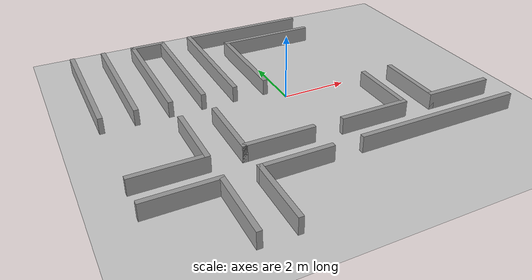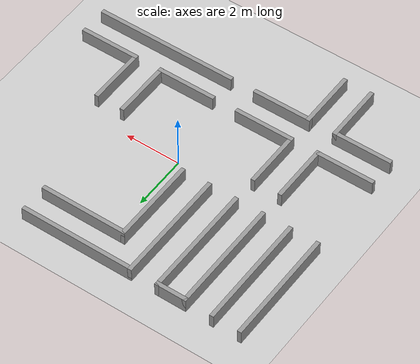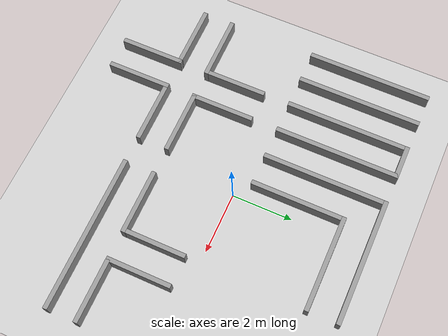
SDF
<sdf version="1.7">
 <world name="default">
  <light name="sun" type="directional">
   <pose>0 0 10 0 -0 0</pose>
   <diffuse>0.8 0.8 0.8 1</diffuse>
   <specular>0.2 0.2 0.2 1</specular>
   <attenuation>
    <range>1000</range>
    <constant>0.9</constant>
    <linear>0.01</linear>
    <quadratic>0.001</quadratic>
   </attenuation>
   <direction>-0.5 0.1 -0.9</direction>
   <spot><inner_angle>0</inner_angle><outer_angle>0</outer_angle><falloff>0</falloff></spot>
  </light>
  <model name="ground_plane">
   <static>1</static>
   <link name="link">
    <collision name="collision">
     <geometry><plane><normal>0 0 1</normal><size>100 100</size></plane></geometry>
     <surface><friction><ode><mu>100</mu><mu2>50</mu2></ode></friction></surface>
    </collision>
    <visual name="visual">
     <cast_shadows>0</cast_shadows>
     <geometry><plane><normal>0 0 1</normal><size>100 100</size></plane></geometry>
     <material>
      <script><uri>file://media/materials/scripts/gazebo.material</uri><name>Gazebo/Grey</name></script>
     </material>
    </visual>
   </link>
  </model>
  <gravity>0 0 -9.8</gravity>
  <magnetic_field>6e-06 2.3e-05 -4.2e-05</magnetic_field>
  <atmosphere type="adiabatic"/>
  <physics type="ode">
   <max_step_size>0.001</max_step_size>
   <real_time_factor>1</real_time_factor>
   <real_time_update_rate>1000</real_time_update_rate>
  </physics>
  <scene><ambient>0.4 0.4 0.4 1</ambient><background>0.7 0.7 0.7 1</background><shadows>1</shadows></scene>
  <audio><device>default</device></audio>
  <spherical_coordinates>
   <surface_model>EARTH_WGS84</surface_model>
   <latitude_deg>0</latitude_deg>
   <longitude_deg>0</longitude_deg>
   <elevation>0</elevation>
   <heading_deg>0</heading_deg>
  </spherical_coordinates>
  <model name="classes">
   <pose>0 -0.5 0 0 -0 0</pose>
   <link name="Wall_11">
    <collision name="Wall_11_Collision">
     <geometry><box><size>3.15 0.15 0.5</size></box></geometry>
     <pose>0 0 0.25 0 -0 0</pose>
    </collision>
    <visual name="Wall_11_Visual">
     <pose>0 0 0.25 0 -0 0</pose>
     <geometry><box><size>3.15 0.15 0.5</size></box></geometry>
     <material>
      <script><uri>file://media/materials/scripts/gazebo.material</uri><name>Gazebo/Grey</name></script>
      <ambient>1 1 1 1</ambient>
     </material>
     <meta><layer>0</layer></meta>
    </visual>
    <pose>-0.5 2.5 0 0 -0 1.5708</pose>
   </link>
   <link name="Wall_12">
    <collision name="Wall_12_Collision">
     <geometry><box><size>3.15 0.15 0.5</size></box></geometry>
     <pose>0 0 0.25 0 -0 0</pose>
    </collision>
    <visual name="Wall_12_Visual">
     <pose>0 0 0.25 0 -0 0</pose>
     <geometry><box><size>3.15 0.15 0.5</size></box></geometry>
     <material>
      <script><uri>file://media/materials/scripts/gazebo.material</uri><name>Gazebo/Grey</name></script>
      <ambient>1 1 1 1</ambient>
     </material>
     <meta><layer>0</layer></meta>
    </visual>
    <pose>1 4 0 0 -0 0</pose>
   </link>
   <link name="Wall_14">
    <collision name="Wall_14_Collision">
     <geometry><box><size>4.15 0.15 0.5</size></box></geometry>
     <pose>0 0 0.25 0 -0 0</pose>
    </collision>
    <visual name="Wall_14_Visual">
     <pose>0 0 0.25 0 -0 0</pose>
     <geometry><box><size>4.15 0.15 0.5</size></box></geometry>
     <material>
      <script><uri>file://media/materials/scripts/gazebo.material</uri><name>Gazebo/Grey</name></script>
      <ambient>1 1 1 1</ambient>
     </material>
     <meta><layer>0</layer></meta>
    </visual>
    <pose>-4.5 3 0 0 -0 1.5708</pose>
   </link>
   <link name="Wall_16">
    <collision name="Wall_16_Collision">
     <geometry><box><size>4.15 0.15 0.5</size></box></geometry>
     <pose>0 0 0.25 0 -0 0</pose>
    </collision>
    <visual name="Wall_16_Visual">
     <pose>0 0 0.25 0 -0 0</pose>
     <geometry><box><size>4.15 0.15 0.5</size></box></geometry>
     <material>
      <script><uri>file://media/materials/scripts/gazebo.material</uri><name>Gazebo/Grey</name></script>
      <ambient>1 1 1 1</ambient>
     </material>
     <meta><layer>0</layer></meta>
    </visual>
    <pose>-5.5 3 0 0 -0 1.5708</pose>
   </link>
   <link name="Wall_21">
    <collision name="Wall_21_Collision">
     <geometry><box><size>2.15 0.15 0.5</size></box></geometry>
     <pose>0 0 0.25 0 -0 0</pose>
    </collision>
    <visual name="Wall_21_Visual">
     <pose>0 0 0.25 0 -0 0</pose>
     <geometry><box><size>2.15 0.15 0.5</size></box></geometry>
     <material>
      <script><uri>file://media/materials/scripts/gazebo.material</uri><name>Gazebo/Grey</name></script>
      <ambient>1 1 1 1</ambient>
     </material>
     <meta><layer>0</layer></meta>
    </visual>
    <pose>-3.5 -1 0 0 -0 -1.5708</pose>
   </link>
   <link name="Wall_22">
    <collision name="Wall_22_Collision">
     <geometry><box><size>2.15 0.15 0.5</size></box></geometry>
     <pose>0 0 0.25 0 -0 0</pose>
    </collision>
    <visual name="Wall_22_Visual">
     <pose>0 0 0.25 0 -0 0</pose>
     <geometry><box><size>2.15 0.15 0.5</size></box></geometry>
     <material>
      <script><uri>file://media/materials/scripts/gazebo.material</uri><name>Gazebo/Grey</name></script>
      <ambient>1 1 1 1</ambient>
     </material>
     <meta><layer>0</layer></meta>
    </visual>
    <pose>-4.5 -2 0 0 -0 3.14159</pose>
   </link>
   <link name="Wall_24">
    <collision name="Wall_24_Collision">
     <geometry><box><size>2.15 0.15 0.5</size></box></geometry>
     <pose>0 0 0.25 0 -0 0</pose>
    </collision>
    <visual name="Wall_24_Visual">
     <pose>0 0 0.25 0 -0 0</pose>
     <geometry><box><size>2.15 0.15 0.5</size></box></geometry>
     <material>
      <script><uri>file://media/materials/scripts/gazebo.material</uri><name>Gazebo/Grey</name></script>
      <ambient>1 1 1 1</ambient>
     </material>
     <meta><layer>0</layer></meta>
    </visual>
    <pose>-2.5 -1 0 0 -0 -1.5708</pose>
   </link>
   <link name="Wall_25">
    <collision name="Wall_25_Collision">
     <geometry><box><size>2.15 0.15 0.5</size></box></geometry>
     <pose>0 0 0.25 0 -0 0</pose>
    </collision>
    <visual name="Wall_25_Visual">
     <pose>0 0 0.25 0 -0 0</pose>
     <geometry><box><size>2.15 0.15 0.5</size></box></geometry>
     <material>
      <script><uri>file://media/materials/scripts/gazebo.material</uri><name>Gazebo/Grey</name></script>
      <ambient>1 1 1 1</ambient>
     </material>
     <meta><layer>0</layer></meta>
    </visual>
    <pose>-1.5 -2 0 0 -0 0</pose>
   </link>
   <link name="Wall_27">
    <collision name="Wall_27_Collision">
     <geometry><box><size>2.15 0.15 0.5</size></box></geometry>
     <pose>0 0 0.25 0 -0 0</pose>
    </collision>
    <visual name="Wall_27_Visual">
     <pose>0 0 0.25 0 -0 0</pose>
     <geometry><box><size>2.15 0.15 0.5</size></box></geometry>
     <material>
      <script><uri>file://media/materials/scripts/gazebo.material</uri><name>Gazebo/Grey</name></script>
      <ambient>1 1 1 1</ambient>
     </material>
     <meta><layer>0</layer></meta>
    </visual>
    <pose>-3.5 -4 0 0 -0 -1.5708</pose>
   </link>
   <link name="Wall_29">
    <collision name="Wall_29_Collision">
     <geometry><box><size>2.15 0.15 0.5</size></box></geometry>
     <pose>0 0 0.25 0 -0 0</pose>
    </collision>
    <visual name="Wall_29_Visual">
     <pose>0 0 0.25 0 -0 0</pose>
     <geometry><box><size>2.15 0.15 0.5</size></box></geometry>
     <material>
      <script><uri>file://media/materials/scripts/gazebo.material</uri><name>Gazebo/Grey</name></script>
      <ambient>1 1 1 1</ambient>
     </material>
     <meta><layer>0</layer></meta>
    </visual>
    <pose>-4.5 -3 0 0 -0 0</pose>
   </link>
   <link name="Wall_31">
    <collision name="Wall_31_Collision">
     <geometry><box><size>2.15 0.15 0.5</size></box></geometry>
     <pose>0 0 0.25 0 -0 0</pose>
    </collision>
    <visual name="Wall_31_Visual">
     <pose>0 0 0.25 0 -0 0</pose>
     <geometry><box><size>2.15 0.15 0.5</size></box></geometry>
     <material>
      <script><uri>file://media/materials/scripts/gazebo.material</uri><name>Gazebo/Grey</name></script>
      <ambient>1 1 1 1</ambient>
     </material>
     <meta><layer>0</layer></meta>
    </visual>
    <pose>-1.5 -3 0 0 -0 3.14159</pose>
   </link>
   <link name="Wall_32">
    <collision name="Wall_32_Collision">
     <geometry><box><size>2.15 0.15 0.5</size></box></geometry>
     <pose>0 0 0.25 0 -0 0</pose>
    </collision>
    <visual name="Wall_32_Visual">
     <pose>0 0 0.25 0 -0 0</pose>
     <geometry><box><size>2.15 0.15 0.5</size></box></geometry>
     <material>
      <script><uri>file://media/materials/scripts/gazebo.material</uri><name>Gazebo/Grey</name></script>
      <ambient>1 1 1 1</ambient>
     </material>
     <meta><layer>0</layer></meta>
    </visual>
    <pose>-2.5 -4 0 0 -0 -1.5708</pose>
   </link>
   <link name="Wall_34">
    <collision name="Wall_34_Collision">
     <geometry><box><size>2.15 0.15 0.5</size></box></geometry>
     <pose>0 0 0.25 0 -0 0</pose>
    </collision>
    <visual name="Wall_34_Visual">
     <pose>0 0 0.25 0 -0 0</pose>
     <geometry><box><size>2.15 0.15 0.5</size></box></geometry>
     <material>
      <script><uri>file://media/materials/scripts/gazebo.material</uri><name>Gazebo/Grey</name></script>
      <ambient>1 1 1 1</ambient>
     </material>
     <meta><layer>0</layer></meta>
    </visual>
    <pose>2.5 -1 0 0 -0 -1.5708</pose>
   </link>
   <link name="Wall_35">
    <collision name="Wall_35_Collision">
     <geometry><box><size>2.15 0.15 0.5</size></box></geometry>
     <pose>0 0 0.25 0 -0 0</pose>
    </collision>
    <visual name="Wall_35_Visual">
     <pose>0 0 0.25 0 -0 0</pose>
     <geometry><box><size>2.15 0.15 0.5</size></box></geometry>
     <material>
      <script><uri>file://media/materials/scripts/gazebo.material</uri><name>Gazebo/Grey</name></script>
      <ambient>1 1 1 1</ambient>
     </material>
     <meta><layer>0</layer></meta>
    </visual>
    <pose>1.5 -2 0 0 -0 3.14159</pose>
   </link>
   <link name="Wall_37">
    <collision name="Wall_37_Collision">
     <geometry><box><size>2.15 0.15 0.5</size></box></geometry>
     <pose>0 0 0.25 0 -0 0</pose>
    </collision>
    <visual name="Wall_37_Visual">
     <pose>0 0 0.25 0 -0 0</pose>
     <geometry><box><size>2.15 0.15 0.5</size></box></geometry>
     <material>
      <script><uri>file://media/materials/scripts/gazebo.material</uri><name>Gazebo/Grey</name></script>
      <ambient>1 1 1 1</ambient>
     </material>
     <meta><layer>0</layer></meta>
    </visual>
    <pose>3.5 -1 0 0 -0 -1.5708</pose>
   </link>
   <link name="Wall_38">
    <collision name="Wall_38_Collision">
     <geometry><box><size>2.15 0.15 0.5</size></box></geometry>
     <pose>0 0 0.25 0 -0 0</pose>
    </collision>
    <visual name="Wall_38_Visual">
     <pose>0 0 0.25 0 -0 0</pose>
     <geometry><box><size>2.15 0.15 0.5</size></box></geometry>
     <material>
      <script><uri>file://media/materials/scripts/gazebo.material</uri><name>Gazebo/Grey</name></script>
      <ambient>1 1 1 1</ambient>
     </material>
     <meta><layer>0</layer></meta>
    </visual>
    <pose>4.5 -2 0 0 -0 0</pose>
   </link>
   <link name="Wall_4">
    <collision name="Wall_4_Collision">
     <geometry><box><size>4.15 0.15 0.5</size></box></geometry>
     <pose>0 0 0.25 0 -0 0</pose>
    </collision>
    <visual name="Wall_4_Visual">
     <pose>0 0 0.25 0 -0 0</pose>
     <geometry><box><size>4.15 0.15 0.5</size></box></geometry>
     <material>
      <script><uri>file://media/materials/scripts/gazebo.material</uri><name>Gazebo/Grey</name></script>
      <ambient>1 1 1 1</ambient>
     </material>
     <meta><layer>0</layer></meta>
    </visual>
    <pose>-3.5 3 0 0 -0 1.5708</pose>
   </link>
   <link name="Wall_41">
    <collision name="Wall_41_Collision">
     <geometry><box><size>5.15 0.15 0.5</size></box></geometry>
     <pose>0 0 0.25 0 -0 0</pose>
    </collision>
    <visual name="Wall_41_Visual">
     <pose>0 0 0.25 0 -0 0</pose>
     <geometry><box><size>5.15 0.15 0.5</size></box></geometry>
     <material>
      <script><uri>file://media/materials/scripts/gazebo.material</uri><name>Gazebo/Grey</name></script>
      <ambient>1 1 1 1</ambient>
     </material>
     <meta><layer>0</layer></meta>
    </visual>
    <pose>3 -3 0 0 -0 0</pose>
   </link>
   <link name="Wall_5">
    <collision name="Wall_5_Collision">
     <geometry><box><size>1.15 0.15 0.5</size></box></geometry>
     <pose>0 0 0.25 0 -0 0</pose>
    </collision>
    <visual name="Wall_5_Visual">
     <pose>0 0 0.25 0 -0 0</pose>
     <geometry><box><size>1.15 0.15 0.5</size></box></geometry>
     <material>
      <script><uri>file://media/materials/scripts/gazebo.material</uri><name>Gazebo/Grey</name></script>
      <ambient>1 1 1 1</ambient>
     </material>
     <meta><layer>0</layer></meta>
    </visual>
    <pose>-3 5 0 0 -0 0</pose>
   </link>
   <link name="Wall_6">
    <collision name="Wall_6_Collision">
     <geometry><box><size>4.15 0.15 0.5</size></box></geometry>
     <pose>0 0 0.25 0 -0 0</pose>
    </collision>
    <visual name="Wall_6_Visual">
     <pose>0 0 0.25 0 -0 0</pose>
     <geometry><box><size>4.15 0.15 0.5</size></box></geometry>
     <material>
      <script><uri>file://media/materials/scripts/gazebo.material</uri><name>Gazebo/Grey</name></script>
      <ambient>1 1 1 1</ambient>
     </material>
     <meta><layer>0</layer></meta>
    </visual>
    <pose>-2.5 3 0 0 -0 -1.5708</pose>
   </link>
   <link name="Wall_8">
    <collision name="Wall_8_Collision">
     <geometry><box><size>4.15 0.15 0.5</size></box></geometry>
     <pose>0 0 0.25 0 -0 0</pose>
    </collision>
    <visual name="Wall_8_Visual">
     <pose>0 0 0.25 0 -0 0</pose>
     <geometry><box><size>4.15 0.15 0.5</size></box></geometry>
     <material>
      <script><uri>file://media/materials/scripts/gazebo.material</uri><name>Gazebo/Grey</name></script>
      <ambient>1 1 1 1</ambient>
     </material>
     <meta><layer>0</layer></meta>
    </visual>
    <pose>-1.5 3 0 0 -0 1.5708</pose>
   </link>
   <link name="Wall_9">
    <collision name="Wall_9_Collision">
     <geometry><box><size>4.15 0.15 0.5</size></box></geometry>
     <pose>0 0 0.25 0 -0 0</pose>
    </collision>
    <visual name="Wall_9_Visual">
     <pose>0 0 0.25 0 -0 0</pose>
     <geometry><box><size>4.15 0.15 0.5</size></box></geometry>
     <material>
      <script><uri>file://media/materials/scripts/gazebo.material</uri><name>Gazebo/Grey</name></script>
      <ambient>1 1 1 1</ambient>
     </material>
     <meta><layer>0</layer></meta>
    </visual>
    <pose>0.5 5 0 0 -0 0</pose>
   </link>
   <static>1</static>
  </model>
 </world>
</sdf>
